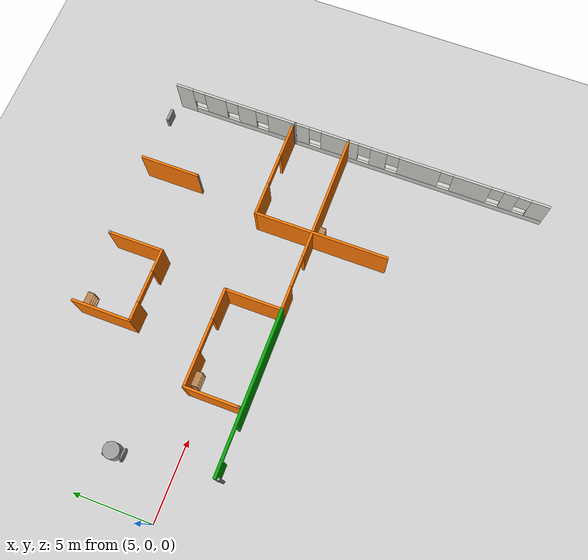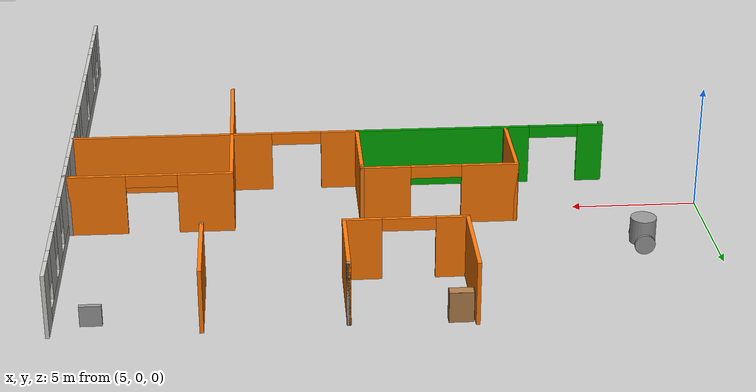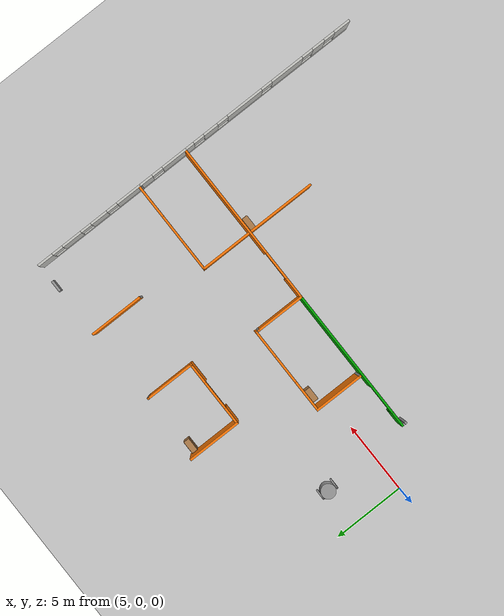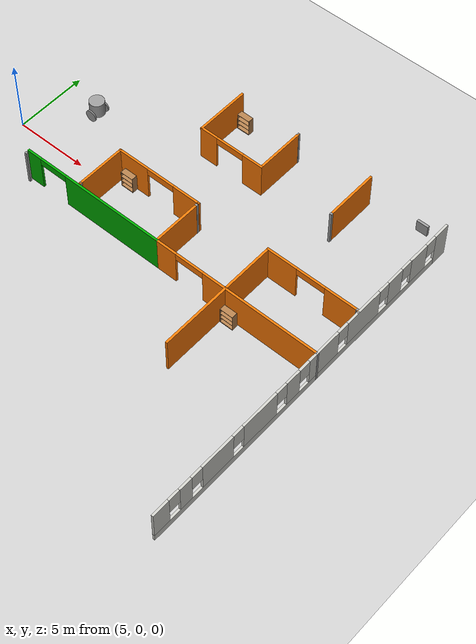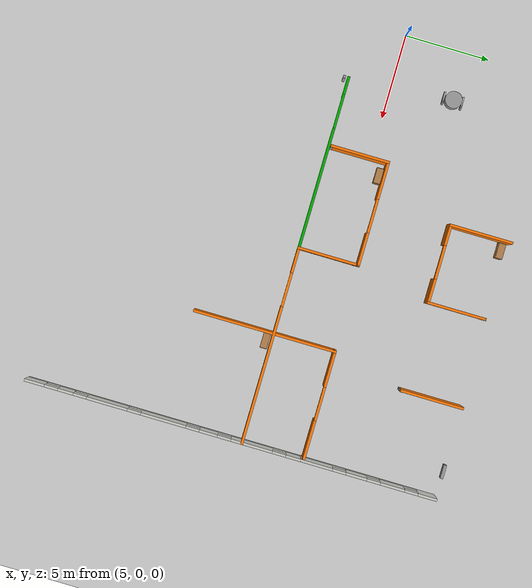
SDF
<sdf version="1.6">
 <world name="default">
  <model name="ground_plane">
   <static>1</static>
   <link name="link">
    <collision name="collision">
     <geometry><plane><normal>0 0 1</normal><size>100 100</size></plane></geometry>
     <surface><friction><ode><mu>100</mu><mu2>50</mu2></ode></friction></surface>
    </collision>
    <visual name="visual">
     <cast_shadows>0</cast_shadows>
     <geometry><plane><normal>0 0 1</normal><size>100 100</size></plane></geometry>
     <material>
      <script><uri>file://media/materials/scripts/gazebo.material</uri><name>Gazebo/Grey</name></script>
     </material>
    </visual>
   </link>
  </model>
  <model name="robot_clone">
   <link name="link_1">
    <inertial>
     <mass>1</mass>
     <inertia><ixx>0.145833</ixx><ixy>0</ixy><ixz>0</ixz><iyy>0.145833</iyy><iyz>0</iyz><izz>0.125</izz></inertia>
    </inertial>
    <visual name="visual">
     <pose>0 0 0.4 0 -0 0</pose>
     <geometry><cylinder><radius>0.5</radius><length>1</length></cylinder></geometry>
     <material>
      <lighting>1</lighting>
      <script><uri>file://media/materials/scripts/gazebo.material</uri><name>Gazebo/Grey</name></script>
      <shader type="pixel"><normal_map>__default__</normal_map></shader>
      <ambient>0.3 0.3 0.3 1</ambient>
      <diffuse>0.7 0.7 0.7 1</diffuse>
      <specular>0.01 0.01 0.01 1</specular>
      <emissive>0 0 0 1</emissive>
     </material>
    </visual>
    <collision name="collision">
     <pose>0 0 0.4 0 -0 0</pose>
     <geometry><cylinder><radius>0.5</radius><length>1</length></cylinder></geometry>
     <surface>
      <friction>
       <ode><mu>1</mu><mu2>1</mu2><fdir1>0 0 0</fdir1><slip1>0</slip1><slip2>0</slip2></ode>
       <torsional>
        <coefficient>1</coefficient>
        <patch_radius>0</patch_radius>
        <surface_radius>0</surface_radius>
        <use_patch_radius>1</use_patch_radius>
        <ode><slip>0</slip></ode>
       </torsional>
      </friction>
      <bounce><restitution_coefficient>0</restitution_coefficient><threshold>1e+06</threshold></bounce>
      <contact>
       <collide_without_contact>0</collide_without_contact>
       <collide_without_contact_bitmask>1</collide_without_contact_bitmask>
       <collide_bitmask>1</collide_bitmask>
       <ode>
        <soft_cfm>0</soft_cfm>
        <soft_erp>0.2</soft_erp>
        <kp>1e+13</kp>
        <kd>1</kd>
        <max_vel>0.01</max_vel>
        <min_depth>0</min_depth>
       </ode>
       <bullet>
        <split_impulse>1</split_impulse>
        <split_impulse_penetration_threshold>-0.01</split_impulse_penetration_threshold>
        <soft_cfm>0</soft_cfm>
        <soft_erp>0.2</soft_erp>
        <kp>1e+13</kp>
        <kd>1</kd>
       </bullet>
      </contact>
     </surface>
    </collision>
   </link>
   <link name="link_1_clone">
    <inertial>
     <mass>1</mass>
     <inertia><ixx>0.145833</ixx><ixy>0</ixy><ixz>0</ixz><iyy>0.145833</iyy><iyz>0</iyz><izz>0.125</izz></inertia>
    </inertial>
    <pose>0 -0.550039 0 1.5707 -0 0</pose>
    <visual name="visual">
     <geometry><cylinder><radius>0.4</radius><length>0.1</length></cylinder></geometry>
     <material>
      <lighting>1</lighting>
      <script><uri>file://media/materials/scripts/gazebo.material</uri><name>Gazebo/Grey</name></script>
      <shader type="pixel"><normal_map>__default__</normal_map></shader>
      <ambient>0.3 0.3 0.3 1</ambient>
      <diffuse>0.7 0.7 0.7 1</diffuse>
      <specular>0.01 0.01 0.01 1</specular>
      <emissive>0 0 0 1</emissive>
     </material>
    </visual>
    <collision name="collision">
     <geometry><cylinder><radius>0.4</radius><length>0.1</length></cylinder></geometry>
     <surface>
      <friction>
       <ode><mu>1</mu><mu2>1</mu2><fdir1>0 0 0</fdir1><slip1>0</slip1><slip2>0</slip2></ode>
       <torsional>
        <coefficient>1</coefficient>
        <patch_radius>0</patch_radius>
        <surface_radius>0</surface_radius>
        <use_patch_radius>1</use_patch_radius>
        <ode><slip>0</slip></ode>
       </torsional>
      </friction>
      <bounce><restitution_coefficient>0</restitution_coefficient><threshold>1e+06</threshold></bounce>
      <contact>
       <collide_without_contact>0</collide_without_contact>
       <collide_without_contact_bitmask>1</collide_without_contact_bitmask>
       <collide_bitmask>1</collide_bitmask>
       <ode>
        <soft_cfm>0</soft_cfm>
        <soft_erp>0.2</soft_erp>
        <kp>1e+13</kp>
        <kd>1</kd>
        <max_vel>0.01</max_vel>
        <min_depth>0</min_depth>
       </ode>
       <bullet>
        <split_impulse>1</split_impulse>
        <split_impulse_penetration_threshold>-0.01</split_impulse_penetration_threshold>
        <soft_cfm>0</soft_cfm>
        <soft_erp>0.2</soft_erp>
        <kp>1e+13</kp>
        <kd>1</kd>
       </bullet>
      </contact>
     </surface>
    </collision>
   </link>
   <link name="link_1_clone_clone">
    <inertial>
     <mass>1</mass>
     <inertia><ixx>0.145833</ixx><ixy>0</ixy><ixz>0</ixz><iyy>0.145833</iyy><iyz>0</iyz><izz>0.125</izz></inertia>
    </inertial>
    <pose>0 0.550039 0 1.5707 -0 0</pose>
    <visual name="visual">
     <geometry><cylinder><radius>0.4</radius><length>0.1</length></cylinder></geometry>
     <material>
      <lighting>1</lighting>
      <script><uri>file://media/materials/scripts/gazebo.material</uri><name>Gazebo/Grey</name></script>
      <shader type="pixel"><normal_map>__default__</normal_map></shader>
      <ambient>0.3 0.3 0.3 1</ambient>
      <diffuse>0.7 0.7 0.7 1</diffuse>
      <specular>0.01 0.01 0.01 1</specular>
      <emissive>0 0 0 1</emissive>
     </material>
    </visual>
    <collision name="collision">
     <geometry><cylinder><radius>0.4</radius><length>0.1</length></cylinder></geometry>
     <surface>
      <friction>
       <ode><mu>1</mu><mu2>1</mu2><fdir1>0 0 0</fdir1><slip1>0</slip1><slip2>0</slip2></ode>
       <torsional>
        <coefficient>1</coefficient>
        <patch_radius>0</patch_radius>
        <surface_radius>0</surface_radius>
        <use_patch_radius>1</use_patch_radius>
        <ode><slip>0</slip></ode>
       </torsional>
      </friction>
      <bounce><restitution_coefficient>0</restitution_coefficient><threshold>1e+06</threshold></bounce>
      <contact>
       <collide_without_contact>0</collide_without_contact>
       <collide_without_contact_bitmask>1</collide_without_contact_bitmask>
       <collide_bitmask>1</collide_bitmask>
       <ode>
        <soft_cfm>0</soft_cfm>
        <soft_erp>0.2</soft_erp>
        <kp>1e+13</kp>
        <kd>1</kd>
        <max_vel>0.01</max_vel>
        <min_depth>0</min_depth>
       </ode>
       <bullet>
        <split_impulse>1</split_impulse>
        <split_impulse_penetration_threshold>-0.01</split_impulse_penetration_threshold>
        <soft_cfm>0</soft_cfm>
        <soft_erp>0.2</soft_erp>
        <kp>1e+13</kp>
        <kd>1</kd>
       </bullet>
      </contact>
     </surface>
    </collision>
   </link>
   <joint name="link_1_JOINT_2" type="revolute">
    <parent>link_1</parent>
    <child>link_1_clone</child>
    <axis>
     <xyz>0 0 1</xyz>
     <use_parent_model_frame>0</use_parent_model_frame>
     <limit>
      <lower>-1.79769e+308</lower>
      <upper>1.79769e+308</upper>
      <effort>-1</effort>
      <velocity>-1</velocity>
     </limit>
     <dynamics>
      <spring_reference>0</spring_reference>
      <spring_stiffness>0</spring_stiffness>
      <damping>0</damping>
     </dynamics>
    </axis>
    <physics>
     <ode><limit><cfm>0</cfm><erp>0.2</erp></limit><suspension><cfm>0</cfm><erp>0.2</erp></suspension></ode>
    </physics>
   </joint>
   <joint name="link_1_JOINT_4" type="revolute">
    <parent>link_1</parent>
    <child>link_1_clone_clone</child>
    <axis>
     <xyz>0 0 1</xyz>
     <use_parent_model_frame>0</use_parent_model_frame>
     <limit>
      <lower>-1.79769e+308</lower>
      <upper>1.79769e+308</upper>
      <effort>-1</effort>
      <velocity>-1</velocity>
     </limit>
     <dynamics>
      <spring_reference>0</spring_reference>
      <spring_stiffness>0</spring_stiffness>
      <damping>0</damping>
     </dynamics>
    </axis>
    <physics>
     <ode><limit><cfm>0</cfm><erp>0.2</erp></limit><suspension><cfm>0</cfm><erp>0.2</erp></suspension></ode>
    </physics>
   </joint>
   <static>0</static>
   <pose>7.91244 3.62299 0.400003 3e-06 -0 0</pose>
  </model>
  <model name="FloorPlan">
   <pose>0.30947 -3.19534 0 0 -0 0</pose>
   <link name="Wall_1">
    <pose>29.8922 -0.024899 0 0 -0 -1.5708</pose>
    <visual name="Wall_1_Visual_0">
     <pose>-11.6902 0 1.25 0 -0 0</pose>
     <geometry><box><size>1.11957 0.15 2.5</size></box></geometry>
     <material>
      <script><uri>file://media/materials/scripts/gazebo.material</uri><name>Gazebo/CeilingTiled</name></script>
      <ambient>0.760784 0.662745 0.627451 1</ambient>
     </material>
     <meta><layer>0</layer></meta>
    </visual>
    <collision name="Wall_1_Collision_0">
     <geometry><box><size>1.11957 0.15 2.5</size></box></geometry>
     <pose>-11.6902 0 1.25 0 -0 0</pose>
    </collision>
    <visual name="Wall_1_Visual_1">
     <pose>0.559784 0 0.25 0 -0 0</pose>
     <geometry><box><size>23.3804 0.15 0.5</size></box></geometry>
     <material>
      <script><uri>file://media/materials/scripts/gazebo.material</uri><name>Gazebo/CeilingTiled</name></script>
      <ambient>0.760784 0.662745 0.627451 1</ambient>
     </material>
     <meta><layer>0</layer></meta>
    </visual>
    <collision name="Wall_1_Collision_1">
     <geometry><box><size>23.3804 0.15 0.5</size></box></geometry>
     <pose>0.559784 0 0.25 0 -0 0</pose>
    </collision>
    <visual name="Wall_1_Visual_2">
     <pose>-9.60688 0 1.5 0 -0 0</pose>
     <geometry><box><size>1.44711 0.15 2</size></box></geometry>
     <material>
      <script><uri>file://media/materials/scripts/gazebo.material</uri><name>Gazebo/CeilingTiled</name></script>
      <ambient>0.760784 0.662745 0.627451 1</ambient>
     </material>
     <meta><layer>0</layer></meta>
    </visual>
    <collision name="Wall_1_Collision_2">
     <geometry><box><size>1.44711 0.15 2</size></box></geometry>
     <pose>-9.60688 0 1.5 0 -0 0</pose>
    </collision>
    <visual name="Wall_1_Visual_3">
     <pose>-7.46678 0 1.5 0 -0 0</pose>
     <geometry><box><size>1.2331 0.15 2</size></box></geometry>
     <material>
      <script><uri>file://media/materials/scripts/gazebo.material</uri><name>Gazebo/CeilingTiled</name></script>
      <ambient>0.760784 0.662745 0.627451 1</ambient>
     </material>
     <meta><layer>0</layer></meta>
    </visual>
    <collision name="Wall_1_Collision_3">
     <geometry><box><size>1.2331 0.15 2</size></box></geometry>
     <pose>-7.46678 0 1.5 0 -0 0</pose>
    </collision>
    <visual name="Wall_1_Visual_4">
     <pose>-4.6579 0 1.5 0 -0 0</pose>
     <geometry><box><size>2.78467 0.15 2</size></box></geometry>
     <material>
      <script><uri>file://media/materials/scripts/gazebo.material</uri><name>Gazebo/CeilingTiled</name></script>
      <ambient>0.760784 0.662745 0.627451 1</ambient>
     </material>
     <meta><layer>0</layer></meta>
    </visual>
    <collision name="Wall_1_Collision_4">
     <geometry><box><size>2.78467 0.15 2</size></box></geometry>
     <pose>-4.6579 0 1.5 0 -0 0</pose>
    </collision>
    <visual name="Wall_1_Visual_5">
     <pose>-1.23374 0 1.5 0 -0 0</pose>
     <geometry><box><size>2.46365 0.15 2</size></box></geometry>
     <material>
      <script><uri>file://media/materials/scripts/gazebo.material</uri><name>Gazebo/CeilingTiled</name></script>
      <ambient>0.760784 0.662745 0.627451 1</ambient>
     </material>
     <meta><layer>0</layer></meta>
    </visual>
    <collision name="Wall_1_Collision_5">
     <geometry><box><size>2.46365 0.15 2</size></box></geometry>
     <pose>-1.23374 0 1.5 0 -0 0</pose>
    </collision>
    <visual name="Wall_1_Visual_6">
     <pose>1.33438 0 1.5 0 -0 0</pose>
     <geometry><box><size>1.07259 0.15 2</size></box></geometry>
     <material>
      <script><uri>file://media/materials/scripts/gazebo.material</uri><name>Gazebo/CeilingTiled</name></script>
      <ambient>0.760784 0.662745 0.627451 1</ambient>
     </material>
     <meta><layer>0</layer></meta>
    </visual>
    <collision name="Wall_1_Collision_6">
     <geometry><box><size>1.07259 0.15 2</size></box></geometry>
     <pose>1.33438 0 1.5 0 -0 0</pose>
    </collision>
    <visual name="Wall_1_Visual_7">
     <pose>4.00951 0 1.5 0 -0 0</pose>
     <geometry><box><size>2.67766 0.15 2</size></box></geometry>
     <material>
      <script><uri>file://media/materials/scripts/gazebo.material</uri><name>Gazebo/CeilingTiled</name></script>
      <ambient>0.760784 0.662745 0.627451 1</ambient>
     </material>
     <meta><layer>0</layer></meta>
    </visual>
    <collision name="Wall_1_Collision_7">
     <geometry><box><size>2.67766 0.15 2</size></box></geometry>
     <pose>4.00951 0 1.5 0 -0 0</pose>
    </collision>
    <visual name="Wall_1_Visual_8">
     <pose>7.35341 0 1.5 0 -0 0</pose>
     <geometry><box><size>2.41015 0.15 2</size></box></geometry>
     <material>
      <script><uri>file://media/materials/scripts/gazebo.material</uri><name>Gazebo/CeilingTiled</name></script>
      <ambient>0.760784 0.662745 0.627451 1</ambient>
     </material>
     <meta><layer>0</layer></meta>
    </visual>
    <collision name="Wall_1_Collision_8">
     <geometry><box><size>2.41015 0.15 2</size></box></geometry>
     <pose>7.35341 0 1.5 0 -0 0</pose>
    </collision>
    <visual name="Wall_1_Visual_9">
     <pose>9.81453 0 1.5 0 -0 0</pose>
     <geometry><box><size>0.91208 0.15 2</size></box></geometry>
     <material>
      <script><uri>file://media/materials/scripts/gazebo.material</uri><name>Gazebo/CeilingTiled</name></script>
      <ambient>0.760784 0.662745 0.627451 1</ambient>
     </material>
     <meta><layer>0</layer></meta>
    </visual>
    <collision name="Wall_1_Collision_9">
     <geometry><box><size>0.91208 0.15 2</size></box></geometry>
     <pose>9.81453 0 1.5 0 -0 0</pose>
    </collision>
    <visual name="Wall_1_Visual_10">
     <pose>11.6603 0 1.5 0 -0 0</pose>
     <geometry><box><size>1.17943 0.15 2</size></box></geometry>
     <material>
      <script><uri>file://media/materials/scripts/gazebo.material</uri><name>Gazebo/CeilingTiled</name></script>
      <ambient>0.760784 0.662745 0.627451 1</ambient>
     </material>
     <meta><layer>0</layer></meta>
    </visual>
    <collision name="Wall_1_Collision_10">
     <geometry><box><size>1.17943 0.15 2</size></box></geometry>
     <pose>11.6603 0 1.5 0 -0 0</pose>
    </collision>
    <visual name="Wall_1_Visual_11">
     <pose>-10.7304 0 1.9 0 -0 0</pose>
     <geometry><box><size>0.8 0.15 1.2</size></box></geometry>
     <material>
      <script><uri>file://media/materials/scripts/gazebo.material</uri><name>Gazebo/CeilingTiled</name></script>
      <ambient>0.760784 0.662745 0.627451 1</ambient>
     </material>
     <meta><layer>0</layer></meta>
    </visual>
    <collision name="Wall_1_Collision_11">
     <geometry><box><size>0.8 0.15 1.2</size></box></geometry>
     <pose>-10.7304 0 1.9 0 -0 0</pose>
    </collision>
    <visual name="Wall_1_Visual_12">
     <pose>-8.48333 0 1.9 0 -0 0</pose>
     <geometry><box><size>0.8 0.15 1.2</size></box></geometry>
     <material>
      <script><uri>file://media/materials/scripts/gazebo.material</uri><name>Gazebo/CeilingTiled</name></script>
      <ambient>0.760784 0.662745 0.627451 1</ambient>
     </material>
     <meta><layer>0</layer></meta>
    </visual>
    <collision name="Wall_1_Collision_12">
     <geometry><box><size>0.8 0.15 1.2</size></box></geometry>
     <pose>-8.48333 0 1.9 0 -0 0</pose>
    </collision>
    <visual name="Wall_1_Visual_13">
     <pose>-6.45023 0 1.9 0 -0 0</pose>
     <geometry><box><size>0.8 0.15 1.2</size></box></geometry>
     <material>
      <script><uri>file://media/materials/scripts/gazebo.material</uri><name>Gazebo/CeilingTiled</name></script>
      <ambient>0.760784 0.662745 0.627451 1</ambient>
     </material>
     <meta><layer>0</layer></meta>
    </visual>
    <collision name="Wall_1_Collision_13">
     <geometry><box><size>0.8 0.15 1.2</size></box></geometry>
     <pose>-6.45023 0 1.9 0 -0 0</pose>
    </collision>
    <visual name="Wall_1_Visual_14">
     <pose>-2.86557 0 1.9 0 -0 0</pose>
     <geometry><box><size>0.8 0.15 1.2</size></box></geometry>
     <material>
      <script><uri>file://media/materials/scripts/gazebo.material</uri><name>Gazebo/CeilingTiled</name></script>
      <ambient>0.760784 0.662745 0.627451 1</ambient>
     </material>
     <meta><layer>0</layer></meta>
    </visual>
    <collision name="Wall_1_Collision_14">
     <geometry><box><size>0.8 0.15 1.2</size></box></geometry>
     <pose>-2.86557 0 1.9 0 -0 0</pose>
    </collision>
    <visual name="Wall_1_Visual_15">
     <pose>0.398088 0 1.9 0 -0 0</pose>
     <geometry><box><size>0.8 0.15 1.2</size></box></geometry>
     <material>
      <script><uri>file://media/materials/scripts/gazebo.material</uri><name>Gazebo/CeilingTiled</name></script>
      <ambient>0.760784 0.662745 0.627451 1</ambient>
     </material>
     <meta><layer>0</layer></meta>
    </visual>
    <collision name="Wall_1_Collision_15">
     <geometry><box><size>0.8 0.15 1.2</size></box></geometry>
     <pose>0.398088 0 1.9 0 -0 0</pose>
    </collision>
    <visual name="Wall_1_Visual_16">
     <pose>2.27068 0 1.9 0 -0 0</pose>
     <geometry><box><size>0.8 0.15 1.2</size></box></geometry>
     <material>
      <script><uri>file://media/materials/scripts/gazebo.material</uri><name>Gazebo/CeilingTiled</name></script>
      <ambient>0.760784 0.662745 0.627451 1</ambient>
     </material>
     <meta><layer>0</layer></meta>
    </visual>
    <collision name="Wall_1_Collision_16">
     <geometry><box><size>0.8 0.15 1.2</size></box></geometry>
     <pose>2.27068 0 1.9 0 -0 0</pose>
    </collision>
    <visual name="Wall_1_Visual_17">
     <pose>5.74834 0 1.9 0 -0 0</pose>
     <geometry><box><size>0.8 0.15 1.2</size></box></geometry>
     <material>
      <script><uri>file://media/materials/scripts/gazebo.material</uri><name>Gazebo/CeilingTiled</name></script>
      <ambient>0.760784 0.662745 0.627451 1</ambient>
     </material>
     <meta><layer>0</layer></meta>
    </visual>
    <collision name="Wall_1_Collision_17">
     <geometry><box><size>0.8 0.15 1.2</size></box></geometry>
     <pose>5.74834 0 1.9 0 -0 0</pose>
    </collision>
    <visual name="Wall_1_Visual_18">
     <pose>8.95849 0 1.9 0 -0 0</pose>
     <geometry><box><size>0.8 0.15 1.2</size></box></geometry>
     <material>
      <script><uri>file://media/materials/scripts/gazebo.material</uri><name>Gazebo/CeilingTiled</name></script>
      <ambient>0.760784 0.662745 0.627451 1</ambient>
     </material>
     <meta><layer>0</layer></meta>
    </visual>
    <collision name="Wall_1_Collision_18">
     <geometry><box><size>0.8 0.15 1.2</size></box></geometry>
     <pose>8.95849 0 1.9 0 -0 0</pose>
    </collision>
    <visual name="Wall_1_Visual_19">
     <pose>10.6706 0 1.9 0 -0 0</pose>
     <geometry><box><size>0.8 0.15 1.2</size></box></geometry>
     <material>
      <script><uri>file://media/materials/scripts/gazebo.material</uri><name>Gazebo/CeilingTiled</name></script>
      <ambient>0.760784 0.662745 0.627451 1</ambient>
     </material>
     <meta><layer>0</layer></meta>
    </visual>
    <collision name="Wall_1_Collision_19">
     <geometry><box><size>0.8 0.15 1.2</size></box></geometry>
     <pose>10.6706 0 1.9 0 -0 0</pose>
    </collision>
   </link>
   <link name="Wall_107">
    <collision name="Wall_107_Collision">
     <geometry><box><size>0.16 0.15 2.5</size></box></geometry>
     <pose>0 0 1.25 0 -0 0</pose>
    </collision>
    <visual name="Wall_107_Visual">
     <pose>0 0 1.25 0 -0 0</pose>
     <geometry><box><size>0.16 0.15 2.5</size></box></geometry>
     <material>
      <script><uri>file://media/materials/scripts/gazebo.material</uri><name>Gazebo/Grey</name></script>
      <ambient>1 1 1 1</ambient>
     </material>
     <meta><layer>0</layer></meta>
    </visual>
    <pose>8.19763 0.399775 0 0 -0 0</pose>
   </link>
   <link name="Wall_123">
    <collision name="Wall_123_Collision">
     <geometry><box><size>0.15 0.15 2.5</size></box></geometry>
     <pose>0 0 1.25 0 -0 0</pose>
    </collision>
    <visual name="Wall_123_Visual">
     <pose>0 0 1.25 0 -0 0</pose>
     <geometry><box><size>0.15 0.15 2.5</size></box></geometry>
     <material>
      <script><uri>file://media/materials/scripts/gazebo.material</uri><name>Gazebo/Grey</name></script>
      <ambient>1 1 1 1</ambient>
     </material>
     <meta><layer>0</layer></meta>
    </visual>
    <pose>29.8852 4.1779 0 0 -0 0</pose>
   </link>
   <link name="Wall_128">
    <pose>24.0926 0.649775 0 0 -0 0</pose>
    <visual name="Wall_128_Visual_0">
     <pose>-5.09508 0 1.25 0 -0 0</pose>
     <geometry><box><size>1.55985 0.15 2.5</size></box></geometry>
     <material>
      <script><uri>file://media/materials/scripts/gazebo.material</uri><name>Gazebo/Grey</name></script>
      <ambient>0.996078 0.47451 0.0196078 1</ambient>
     </material>
     <meta><layer>0</layer></meta>
    </visual>
    <collision name="Wall_128_Collision_0">
     <geometry><box><size>1.55985 0.15 2.5</size></box></geometry>
     <pose>-5.09508 0 1.25 0 -0 0</pose>
    </collision>
    <visual name="Wall_128_Visual_1">
     <pose>1.77992 0 1.25 0 -0 0</pose>
     <geometry><box><size>8.19015 0.15 2.5</size></box></geometry>
     <material>
      <script><uri>file://media/materials/scripts/gazebo.material</uri><name>Gazebo/Grey</name></script>
      <ambient>0.996078 0.47451 0.0196078 1</ambient>
     </material>
     <meta><layer>0</layer></meta>
    </visual>
    <collision name="Wall_128_Collision_1">
     <geometry><box><size>8.19015 0.15 2.5</size></box></geometry>
     <pose>1.77992 0 1.25 0 -0 0</pose>
    </collision>
    <visual name="Wall_128_Visual_2">
     <pose>-3.31515 0 2.25 0 -0 0</pose>
     <geometry><box><size>2 0.15 0.5</size></box></geometry>
     <material>
      <script><uri>file://media/materials/scripts/gazebo.material</uri><name>Gazebo/Grey</name></script>
      <ambient>0.996078 0.47451 0.0196078 1</ambient>
     </material>
     <meta><layer>0</layer></meta>
    </visual>
    <collision name="Wall_128_Collision_2">
     <geometry><box><size>2 0.15 0.5</size></box></geometry>
     <pose>-3.31515 0 2.25 0 -0 0</pose>
    </collision>
   </link>
   <link name="Wall_129">
    <collision name="Wall_129_Collision">
     <geometry><box><size>0.15 0.15 2.5</size></box></geometry>
     <pose>0 0 1.25 0 -0 0</pose>
    </collision>
    <visual name="Wall_129_Visual">
     <pose>0 0 1.25 0 -0 0</pose>
     <geometry><box><size>0.15 0.15 2.5</size></box></geometry>
     <material>
      <script><uri>file://media/materials/scripts/gazebo.material</uri><name>Gazebo/Grey</name></script>
      <ambient>1 1 1 1</ambient>
     </material>
     <meta><layer>0</layer></meta>
    </visual>
    <pose>29.8926 0.649775 0 0 -0 0</pose>
   </link>
   <link name="Wall_131">
    <collision name="Wall_131_Collision">
     <geometry><box><size>3.5 0.15 2.5</size></box></geometry>
     <pose>0 0 1.25 0 -0 0</pose>
    </collision>
    <visual name="Wall_131_Visual">
     <pose>0 0 1.25 0 -0 0</pose>
     <geometry><box><size>3.5 0.15 2.5</size></box></geometry>
     <material>
      <script><uri>file://media/materials/scripts/gazebo.material</uri><name>Gazebo/Grey</name></script>
      <ambient>0.996078 0.47451 0.0196078 1</ambient>
     </material>
     <meta><layer>0</layer></meta>
    </visual>
    <pose>18.2926 2.32477 0 0 -0 1.5708</pose>
   </link>
   <link name="Wall_132">
    <collision name="Wall_132_Collision">
     <geometry><box><size>0.16 0.15 2.5</size></box></geometry>
     <pose>0 0 1.25 0 -0 0</pose>
    </collision>
    <visual name="Wall_132_Visual">
     <pose>0 0 1.25 0 -0 0</pose>
     <geometry><box><size>0.16 0.15 2.5</size></box></geometry>
     <material>
      <script><uri>file://media/materials/scripts/gazebo.material</uri><name>Gazebo/Grey</name></script>
      <ambient>1 1 1 1</ambient>
     </material>
     <meta><layer>0</layer></meta>
    </visual>
    <pose>18.2976 3.99978 0 0 -0 0</pose>
   </link>
   <link name="Wall_134">
    <collision name="Wall_134_Collision">
     <geometry><box><size>8.5 0.15 2.5</size></box></geometry>
     <pose>0 0 1.25 0 -0 0</pose>
    </collision>
    <visual name="Wall_134_Visual">
     <pose>0 0 1.25 0 -0 0</pose>
     <geometry><box><size>8.5 0.15 2.5</size></box></geometry>
     <material>
      <script><uri>file://media/materials/scripts/gazebo.material</uri><name>Gazebo/Grey</name></script>
      <ambient>0.996078 0.47451 0.0196078 1</ambient>
     </material>
     <meta><layer>0</layer></meta>
    </visual>
    <pose>23.3991 0.109907 0 0 -0 -1.5708</pose>
   </link>
   <link name="Wall_157">
    <collision name="Wall_157_Collision">
     <geometry><box><size>3.75 0.15 2.5</size></box></geometry>
     <pose>0 0 1.25 0 -0 0</pose>
    </collision>
    <visual name="Wall_157_Visual">
     <pose>0 0 1.25 0 -0 0</pose>
     <geometry><box><size>3.75 0.15 2.5</size></box></geometry>
     <material>
      <script><uri>file://media/materials/scripts/gazebo.material</uri><name>Gazebo/Grey</name></script>
      <ambient>0.996078 0.47451 0.0196078 1</ambient>
     </material>
     <meta><layer>0</layer></meta>
    </visual>
    <pose>14.6247 10.4033 0 0 -0 -1.5708</pose>
   </link>
   <link name="Wall_158">
    <pose>16.9247 8.60328 0 0 -0 0</pose>
    <visual name="Wall_158_Visual_0">
     <pose>-1.7407 0 1.25 0 -0 0</pose>
     <geometry><box><size>1.2686 0.15 2.5</size></box></geometry>
     <material>
      <script><uri>file://media/materials/scripts/gazebo.material</uri><name>Gazebo/Grey</name></script>
      <ambient>0.996078 0.47451 0.0196078 1</ambient>
     </material>
     <meta><layer>0</layer></meta>
    </visual>
    <collision name="Wall_158_Collision_0">
     <geometry><box><size>1.2686 0.15 2.5</size></box></geometry>
     <pose>-1.7407 0 1.25 0 -0 0</pose>
    </collision>
    <visual name="Wall_158_Visual_1">
     <pose>1.6343 0 1.25 0 -0 0</pose>
     <geometry><box><size>1.4814 0.15 2.5</size></box></geometry>
     <material>
      <script><uri>file://media/materials/scripts/gazebo.material</uri><name>Gazebo/Grey</name></script>
      <ambient>0.996078 0.47451 0.0196078 1</ambient>
     </material>
     <meta><layer>0</layer></meta>
    </visual>
    <collision name="Wall_158_Collision_1">
     <geometry><box><size>1.4814 0.15 2.5</size></box></geometry>
     <pose>1.6343 0 1.25 0 -0 0</pose>
    </collision>
    <visual name="Wall_158_Visual_2">
     <pose>-0.106397 0 2.25 0 -0 0</pose>
     <geometry><box><size>2 0.15 0.5</size></box></geometry>
     <material>
      <script><uri>file://media/materials/scripts/gazebo.material</uri><name>Gazebo/Grey</name></script>
      <ambient>0.996078 0.47451 0.0196078 1</ambient>
     </material>
     <meta><layer>0</layer></meta>
    </visual>
    <collision name="Wall_158_Collision_2">
     <geometry><box><size>2 0.15 0.5</size></box></geometry>
     <pose>-0.106397 0 2.25 0 -0 0</pose>
    </collision>
   </link>
   <link name="Wall_159">
    <collision name="Wall_159_Collision">
     <geometry><box><size>3.5 0.15 2.5</size></box></geometry>
     <pose>0 0 1.25 0 -0 0</pose>
    </collision>
    <visual name="Wall_159_Visual">
     <pose>0 0 1.25 0 -0 0</pose>
     <geometry><box><size>3.5 0.15 2.5</size></box></geometry>
     <material>
      <script><uri>file://media/materials/scripts/gazebo.material</uri><name>Gazebo/Grey</name></script>
      <ambient>0.996078 0.47451 0.0196078 1</ambient>
     </material>
     <meta><layer>0</layer></meta>
    </visual>
    <pose>19.2247 10.2783 0 0 -0 1.5708</pose>
   </link>
   <link name="Wall_160">
    <collision name="Wall_160_Collision">
     <geometry><box><size>0.16 0.15 2.5</size></box></geometry>
     <pose>0 0 1.25 0 -0 0</pose>
    </collision>
    <visual name="Wall_160_Visual">
     <pose>0 0 1.25 0 -0 0</pose>
     <geometry><box><size>0.16 0.15 2.5</size></box></geometry>
     <material>
      <script><uri>file://media/materials/scripts/gazebo.material</uri><name>Gazebo/Grey</name></script>
      <ambient>1 1 1 1</ambient>
     </material>
     <meta><layer>0</layer></meta>
    </visual>
    <pose>19.2297 11.9533 0 0 -0 0</pose>
   </link>
   <link name="Wall_169">
    <collision name="Wall_169_Collision">
     <geometry><box><size>3.5 0.15 2.5</size></box></geometry>
     <pose>0 0 1.25 0 -0 0</pose>
    </collision>
    <visual name="Wall_169_Visual">
     <pose>0 0 1.25 0 -0 0</pose>
     <geometry><box><size>3.5 0.15 2.5</size></box></geometry>
     <material>
      <script><uri>file://media/materials/scripts/gazebo.material</uri><name>Gazebo/Grey</name></script>
      <ambient>0.996078 0.47451 0.0196078 1</ambient>
     </material>
     <meta><layer>0</layer></meta>
    </visual>
    <pose>12.1852 2.5029 0 0 -0 -1.5708</pose>
   </link>
   <link name="Wall_170">
    <collision name="Wall_170_Collision">
     <geometry><box><size>0.16 0.15 2.5</size></box></geometry>
     <pose>0 0 1.25 0 -0 0</pose>
    </collision>
    <visual name="Wall_170_Visual">
     <pose>0 0 1.25 0 -0 0</pose>
     <geometry><box><size>0.16 0.15 2.5</size></box></geometry>
     <material>
      <script><uri>file://media/materials/scripts/gazebo.material</uri><name>Gazebo/Grey</name></script>
      <ambient>1 1 1 1</ambient>
     </material>
     <meta><layer>0</layer></meta>
    </visual>
    <pose>12.1902 0.827902 0 0 -0 0</pose>
   </link>
   <link name="Wall_172">
    <pose>15.2352 4.1779 0 0 -0 0</pose>
    <visual name="Wall_172_Visual_0">
     <pose>-1.99324 0 1.25 0 -0 0</pose>
     <geometry><box><size>2.26353 0.15 2.5</size></box></geometry>
     <material>
      <script><uri>file://media/materials/scripts/gazebo.material</uri><name>Gazebo/Grey</name></script>
      <ambient>0.996078 0.47451 0.0196078 1</ambient>
     </material>
     <meta><layer>0</layer></meta>
    </visual>
    <collision name="Wall_172_Collision_0">
     <geometry><box><size>2.26353 0.15 2.5</size></box></geometry>
     <pose>-1.99324 0 1.25 0 -0 0</pose>
    </collision>
    <visual name="Wall_172_Visual_1">
     <pose>2.13176 0 1.25 0 -0 0</pose>
     <geometry><box><size>1.98647 0.15 2.5</size></box></geometry>
     <material>
      <script><uri>file://media/materials/scripts/gazebo.material</uri><name>Gazebo/Grey</name></script>
      <ambient>0.996078 0.47451 0.0196078 1</ambient>
     </material>
     <meta><layer>0</layer></meta>
    </visual>
    <collision name="Wall_172_Collision_1">
     <geometry><box><size>1.98647 0.15 2.5</size></box></geometry>
     <pose>2.13176 0 1.25 0 -0 0</pose>
    </collision>
    <visual name="Wall_172_Visual_2">
     <pose>0.138528 0 2.25 0 -0 0</pose>
     <geometry><box><size>2 0.15 0.5</size></box></geometry>
     <material>
      <script><uri>file://media/materials/scripts/gazebo.material</uri><name>Gazebo/Grey</name></script>
      <ambient>0.996078 0.47451 0.0196078 1</ambient>
     </material>
     <meta><layer>0</layer></meta>
    </visual>
    <collision name="Wall_172_Collision_2">
     <geometry><box><size>2 0.15 0.5</size></box></geometry>
     <pose>0.138528 0 2.25 0 -0 0</pose>
    </collision>
   </link>
   <link name="Wall_173">
    <collision name="Wall_173_Collision">
     <geometry><box><size>0.16 0.15 2.5</size></box></geometry>
     <pose>0 0 1.25 0 -0 0</pose>
    </collision>
    <visual name="Wall_173_Visual">
     <pose>0 0 1.25 0 -0 0</pose>
     <geometry><box><size>0.16 0.15 2.5</size></box></geometry>
     <material>
      <script><uri>file://media/materials/scripts/gazebo.material</uri><name>Gazebo/Grey</name></script>
      <ambient>0.996078 0.47451 0.0196078 1</ambient>
     </material>
     <meta><layer>0</layer></meta>
    </visual>
    <pose>18.2902 4.1779 0 0 -0 0</pose>
   </link>
   <link name="Wall_175">
    <pose>26.5741 4.28491 0 0 -0 0</pose>
    <visual name="Wall_175_Visual_0">
     <pose>-2.16093 0 1.25 0 -0 0</pose>
     <geometry><box><size>2.17814 0.15 2.5</size></box></geometry>
     <material>
      <script><uri>file://media/materials/scripts/gazebo.material</uri><name>Gazebo/Grey</name></script>
      <ambient>0.996078 0.47451 0.0196078 1</ambient>
     </material>
     <meta><layer>0</layer></meta>
    </visual>
    <collision name="Wall_175_Collision_0">
     <geometry><box><size>2.17814 0.15 2.5</size></box></geometry>
     <pose>-2.16093 0 1.25 0 -0 0</pose>
    </collision>
    <visual name="Wall_175_Visual_1">
     <pose>2.08907 0 1.25 0 -0 0</pose>
     <geometry><box><size>2.32186 0.15 2.5</size></box></geometry>
     <material>
      <script><uri>file://media/materials/scripts/gazebo.material</uri><name>Gazebo/Grey</name></script>
      <ambient>0.996078 0.47451 0.0196078 1</ambient>
     </material>
     <meta><layer>0</layer></meta>
    </visual>
    <collision name="Wall_175_Collision_1">
     <geometry><box><size>2.32186 0.15 2.5</size></box></geometry>
     <pose>2.08907 0 1.25 0 -0 0</pose>
    </collision>
    <visual name="Wall_175_Visual_2">
     <pose>-0.071856 0 2.25 0 -0 0</pose>
     <geometry><box><size>2 0.15 0.5</size></box></geometry>
     <material>
      <script><uri>file://media/materials/scripts/gazebo.material</uri><name>Gazebo/Grey</name></script>
      <ambient>0.996078 0.47451 0.0196078 1</ambient>
     </material>
     <meta><layer>0</layer></meta>
    </visual>
    <collision name="Wall_175_Collision_2">
     <geometry><box><size>2 0.15 0.5</size></box></geometry>
     <pose>-0.071856 0 2.25 0 -0 0</pose>
    </collision>
   </link>
   <link name="Wall_176">
    <collision name="Wall_176_Collision">
     <geometry><box><size>0.16 0.15 2.5</size></box></geometry>
     <pose>0 0 1.25 0 -0 0</pose>
    </collision>
    <visual name="Wall_176_Visual">
     <pose>0 0 1.25 0 -0 0</pose>
     <geometry><box><size>0.16 0.15 2.5</size></box></geometry>
     <material>
      <script><uri>file://media/materials/scripts/gazebo.material</uri><name>Gazebo/Grey</name></script>
      <ambient>1 1 1 1</ambient>
     </material>
     <meta><layer>0</layer></meta>
    </visual>
    <pose>29.7541 4.28491 0 0 -0 0</pose>
   </link>
   <link name="Wall_178">
    <collision name="Wall_178_Collision">
     <geometry><box><size>3.75 0.15 2.5</size></box></geometry>
     <pose>0 0 1.25 0 -0 0</pose>
    </collision>
    <visual name="Wall_178_Visual">
     <pose>0 0 1.25 0 -0 0</pose>
     <geometry><box><size>3.75 0.15 2.5</size></box></geometry>
     <material>
      <script><uri>file://media/materials/scripts/gazebo.material</uri><name>Gazebo/Grey</name></script>
      <ambient>0.996078 0.47451 0.0196078 1</ambient>
     </material>
     <meta><layer>0</layer></meta>
    </visual>
    <pose>24.4691 10.3498 0 0 -0 -1.5708</pose>
   </link>
   <link name="Wall_179">
    <collision name="Wall_179_Collision">
     <geometry><box><size>0.16 0.15 2.5</size></box></geometry>
     <pose>0 0 1.25 0 -0 0</pose>
    </collision>
    <visual name="Wall_179_Visual">
     <pose>0 0 1.25 0 -0 0</pose>
     <geometry><box><size>0.16 0.15 2.5</size></box></geometry>
     <material>
      <script><uri>file://media/materials/scripts/gazebo.material</uri><name>Gazebo/Grey</name></script>
      <ambient>1 1 1 1</ambient>
     </material>
     <meta><layer>0</layer></meta>
    </visual>
    <pose>24.4741 8.54978 0 0 -0 0</pose>
   </link>
   <link name="Wall_4">
    <pose>13.2426 0.649775 0 0 -0 3.14159</pose>
    <visual name="Wall_4_Visual_0">
     <pose>-1.53317 0 1.25 0 -0 0</pose>
     <geometry><box><size>7.18365 0.15 2.5</size></box></geometry>
     <material>
      <script><uri>file://media/materials/scripts/gazebo.material</uri><name>Gazebo/Grey</name></script>
      <ambient>0 0.666667 0 1</ambient>
     </material>
     <meta><layer>0</layer></meta>
    </visual>
    <collision name="Wall_4_Collision_0">
     <geometry><box><size>7.18365 0.15 2.5</size></box></geometry>
     <pose>-1.53317 0 1.25 0 -0 0</pose>
    </collision>
    <visual name="Wall_4_Visual_1">
     <pose>4.59183 0 1.25 0 -0 0</pose>
     <geometry><box><size>1.06635 0.15 2.5</size></box></geometry>
     <material>
      <script><uri>file://media/materials/scripts/gazebo.material</uri><name>Gazebo/Grey</name></script>
      <ambient>0 0.666667 0 1</ambient>
     </material>
     <meta><layer>0</layer></meta>
    </visual>
    <collision name="Wall_4_Collision_1">
     <geometry><box><size>1.06635 0.15 2.5</size></box></geometry>
     <pose>4.59183 0 1.25 0 -0 0</pose>
    </collision>
    <visual name="Wall_4_Visual_2">
     <pose>3.05865 0 2.25 0 -0 0</pose>
     <geometry><box><size>2 0.15 0.5</size></box></geometry>
     <material>
      <script><uri>file://media/materials/scripts/gazebo.material</uri><name>Gazebo/Grey</name></script>
      <ambient>0 0.666667 0 1</ambient>
     </material>
     <meta><layer>0</layer></meta>
    </visual>
    <collision name="Wall_4_Collision_2">
     <geometry><box><size>2 0.15 0.5</size></box></geometry>
     <pose>3.05865 0 2.25 0 -0 0</pose>
    </collision>
   </link>
   <link name="Window_36">
    <collision name="Window_36_Collision">
     <geometry><box><size>0.8 0.17 0.8</size></box></geometry>
     <pose>0 0 0.4 0 -0 0</pose>
    </collision>
    <visual name="Window_36_Visual">
     <pose>0 0 0.4 0 -0 0</pose>
     <geometry><box><size>0.8 0.17 0.8</size></box></geometry>
     <material>
      <script><uri>file://media/materials/scripts/gazebo.material</uri><name>Gazebo/Grey</name></script>
     </material>
    </visual>
    <pose>28.3213 12.2568 0.5 0 -0 0</pose>
   </link>
   <static>1</static>
  </model>
  <model name="bookshelf">
   <static>1</static>
   <link name="link">
    <inertial><mass>1</mass></inertial>
    <collision name="back">
     <pose>0 0.005 0.6 0 -0 0</pose>
     <geometry><box><size>0.9 0.01 1.2</size></box></geometry>
    </collision>
    <visual name="visual1">
     <pose>0 0.005 0.6 0 -0 0</pose>
     <geometry><box><size>0.9 0.01 1.2</size></box></geometry>
     <material>
      <script><uri>file://media/materials/scripts/gazebo.material</uri><name>Gazebo/Wood</name></script>
     </material>
    </visual>
    <collision name="left_side">
     <pose>0.45 -0.195 0.6 0 -0 0</pose>
     <geometry><box><size>0.02 0.4 1.2</size></box></geometry>
    </collision>
    <visual name="visual2">
     <pose>0.45 -0.195 0.6 0 -0 0</pose>
     <geometry><box><size>0.02 0.4 1.2</size></box></geometry>
     <material>
      <script><uri>file://media/materials/scripts/gazebo.material</uri><name>Gazebo/Wood</name></script>
     </material>
    </visual>
    <collision name="right_side">
     <pose>-0.45 -0.195 0.6 0 -0 0</pose>
     <geometry><box><size>0.02 0.4 1.2</size></box></geometry>
    </collision>
    <visual name="visual3">
     <pose>-0.45 -0.195 0.6 0 -0 0</pose>
     <geometry><box><size>0.02 0.4 1.2</size></box></geometry>
     <material>
      <script><uri>file://media/materials/scripts/gazebo.material</uri><name>Gazebo/Wood</name></script>
     </material>
    </visual>
    <collision name="bottom">
     <pose>0 -0.195 0.03 0 -0 0</pose>
     <geometry><box><size>0.88 0.4 0.06</size></box></geometry>
    </collision>
    <visual name="visual4">
     <pose>0 -0.195 0.03 0 -0 0</pose>
     <geometry><box><size>0.88 0.4 0.06</size></box></geometry>
     <material>
      <script><uri>file://media/materials/scripts/gazebo.material</uri><name>Gazebo/Wood</name></script>
     </material>
    </visual>
    <collision name="top">
     <pose>0 -0.195 1.19 0 -0 0</pose>
     <geometry><box><size>0.88 0.4 0.02</size></box></geometry>
    </collision>
    <visual name="visual5">
     <pose>0 -0.195 1.19 0 -0 0</pose>
     <geometry><box><size>0.88 0.4 0.02</size></box></geometry>
     <material>
      <script><uri>file://media/materials/scripts/gazebo.material</uri><name>Gazebo/Wood</name></script>
     </material>
    </visual>
    <collision name="low_shelf">
     <pose>0 -0.195 0.43 0 -0 0</pose>
     <geometry><box><size>0.88 0.4 0.02</size></box></geometry>
    </collision>
    <visual name="visual6">
     <pose>0 -0.195 0.43 0 -0 0</pose>
     <geometry><box><size>0.88 0.4 0.02</size></box></geometry>
     <material>
      <script><uri>file://media/materials/scripts/gazebo.material</uri><name>Gazebo/Wood</name></script>
     </material>
    </visual>
    <collision name="high_shelf">
     <pose>0 -0.195 0.8 0 -0 0</pose>
     <geometry><box><size>0.88 0.4 0.02</size></box></geometry>
    </collision>
    <visual name="visual7">
     <pose>0 -0.195 0.8 0 -0 0</pose>
     <geometry><box><size>0.88 0.4 0.02</size></box></geometry>
     <material>
      <script><uri>file://media/materials/scripts/gazebo.material</uri><name>Gazebo/Wood</name></script>
     </material>
    </visual>
   </link>
   <pose>13.3216 0.899877 0 0 -0 0</pose>
  </model>
  <model name="bookshelf_2">
   <static>1</static>
   <link name="link">
    <inertial><mass>1</mass></inertial>
    <collision name="back">
     <pose>0 0.005 0.6 0 -0 0</pose>
     <geometry><box><size>0.9 0.01 1.2</size></box></geometry>
    </collision>
    <visual name="visual1">
     <pose>0 0.005 0.6 0 -0 0</pose>
     <geometry><box><size>0.9 0.01 1.2</size></box></geometry>
     <material>
      <script><uri>file://media/materials/scripts/gazebo.material</uri><name>Gazebo/Wood</name></script>
     </material>
    </visual>
    <collision name="left_side">
     <pose>0.45 -0.195 0.6 0 -0 0</pose>
     <geometry><box><size>0.02 0.4 1.2</size></box></geometry>
    </collision>
    <visual name="visual2">
     <pose>0.45 -0.195 0.6 0 -0 0</pose>
     <geometry><box><size>0.02 0.4 1.2</size></box></geometry>
     <material>
      <script><uri>file://media/materials/scripts/gazebo.material</uri><name>Gazebo/Wood</name></script>
     </material>
    </visual>
    <collision name="right_side">
     <pose>-0.45 -0.195 0.6 0 -0 0</pose>
     <geometry><box><size>0.02 0.4 1.2</size></box></geometry>
    </collision>
    <visual name="visual3">
     <pose>-0.45 -0.195 0.6 0 -0 0</pose>
     <geometry><box><size>0.02 0.4 1.2</size></box></geometry>
     <material>
      <script><uri>file://media/materials/scripts/gazebo.material</uri><name>Gazebo/Wood</name></script>
     </material>
    </visual>
    <collision name="bottom">
     <pose>0 -0.195 0.03 0 -0 0</pose>
     <geometry><box><size>0.88 0.4 0.06</size></box></geometry>
    </collision>
    <visual name="visual4">
     <pose>0 -0.195 0.03 0 -0 0</pose>
     <geometry><box><size>0.88 0.4 0.06</size></box></geometry>
     <material>
      <script><uri>file://media/materials/scripts/gazebo.material</uri><name>Gazebo/Wood</name></script>
     </material>
    </visual>
    <collision name="top">
     <pose>0 -0.195 1.19 0 -0 0</pose>
     <geometry><box><size>0.88 0.4 0.02</size></box></geometry>
    </collision>
    <visual name="visual5">
     <pose>0 -0.195 1.19 0 -0 0</pose>
     <geometry><box><size>0.88 0.4 0.02</size></box></geometry>
     <material>
      <script><uri>file://media/materials/scripts/gazebo.material</uri><name>Gazebo/Wood</name></script>
     </material>
    </visual>
    <collision name="low_shelf">
     <pose>0 -0.195 0.43 0 -0 0</pose>
     <geometry><box><size>0.88 0.4 0.02</size></box></geometry>
    </collision>
    <visual name="visual6">
     <pose>0 -0.195 0.43 0 -0 0</pose>
     <geometry><box><size>0.88 0.4 0.02</size></box></geometry>
     <material>
      <script><uri>file://media/materials/scripts/gazebo.material</uri><name>Gazebo/Wood</name></script>
     </material>
    </visual>
    <collision name="high_shelf">
     <pose>0 -0.195 0.8 0 -0 0</pose>
     <geometry><box><size>0.88 0.4 0.02</size></box></geometry>
    </collision>
    <visual name="visual7">
     <pose>0 -0.195 0.8 0 -0 0</pose>
     <geometry><box><size>0.88 0.4 0.02</size></box></geometry>
     <material>
      <script><uri>file://media/materials/scripts/gazebo.material</uri><name>Gazebo/Wood</name></script>
     </material>
    </visual>
   </link>
   <pose>24.2556 -2.70502 0 0 -0 0</pose>
  </model>
  <model name="bookshelf_3">
   <static>1</static>
   <link name="link">
    <inertial><mass>1</mass></inertial>
    <collision name="back">
     <pose>0 0.005 0.6 0 -0 0</pose>
     <geometry><box><size>0.9 0.01 1.2</size></box></geometry>
    </collision>
    <visual name="visual1">
     <pose>0 0.005 0.6 0 -0 0</pose>
     <geometry><box><size>0.9 0.01 1.2</size></box></geometry>
     <material>
      <script><uri>file://media/materials/scripts/gazebo.material</uri><name>Gazebo/Wood</name></script>
     </material>
    </visual>
    <collision name="left_side">
     <pose>0.45 -0.195 0.6 0 -0 0</pose>
     <geometry><box><size>0.02 0.4 1.2</size></box></geometry>
    </collision>
    <visual name="visual2">
     <pose>0.45 -0.195 0.6 0 -0 0</pose>
     <geometry><box><size>0.02 0.4 1.2</size></box></geometry>
     <material>
      <script><uri>file://media/materials/scripts/gazebo.material</uri><name>Gazebo/Wood</name></script>
     </material>
    </visual>
    <collision name="right_side">
     <pose>-0.45 -0.195 0.6 0 -0 0</pose>
     <geometry><box><size>0.02 0.4 1.2</size></box></geometry>
    </collision>
    <visual name="visual3">
     <pose>-0.45 -0.195 0.6 0 -0 0</pose>
     <geometry><box><size>0.02 0.4 1.2</size></box></geometry>
     <material>
      <script><uri>file://media/materials/scripts/gazebo.material</uri><name>Gazebo/Wood</name></script>
     </material>
    </visual>
    <collision name="bottom">
     <pose>0 -0.195 0.03 0 -0 0</pose>
     <geometry><box><size>0.88 0.4 0.06</size></box></geometry>
    </collision>
    <visual name="visual4">
     <pose>0 -0.195 0.03 0 -0 0</pose>
     <geometry><box><size>0.88 0.4 0.06</size></box></geometry>
     <material>
      <script><uri>file://media/materials/scripts/gazebo.material</uri><name>Gazebo/Wood</name></script>
     </material>
    </visual>
    <collision name="top">
     <pose>0 -0.195 1.19 0 -0 0</pose>
     <geometry><box><size>0.88 0.4 0.02</size></box></geometry>
    </collision>
    <visual name="visual5">
     <pose>0 -0.195 1.19 0 -0 0</pose>
     <geometry><box><size>0.88 0.4 0.02</size></box></geometry>
     <material>
      <script><uri>file://media/materials/scripts/gazebo.material</uri><name>Gazebo/Wood</name></script>
     </material>
    </visual>
    <collision name="low_shelf">
     <pose>0 -0.195 0.43 0 -0 0</pose>
     <geometry><box><size>0.88 0.4 0.02</size></box></geometry>
    </collision>
    <visual name="visual6">
     <pose>0 -0.195 0.43 0 -0 0</pose>
     <geometry><box><size>0.88 0.4 0.02</size></box></geometry>
     <material>
      <script><uri>file://media/materials/scripts/gazebo.material</uri><name>Gazebo/Wood</name></script>
     </material>
    </visual>
    <collision name="high_shelf">
     <pose>0 -0.195 0.8 0 -0 0</pose>
     <geometry><box><size>0.88 0.4 0.02</size></box></geometry>
    </collision>
    <visual name="visual7">
     <pose>0 -0.195 0.8 0 -0 0</pose>
     <geometry><box><size>0.88 0.4 0.02</size></box></geometry>
     <material>
      <script><uri>file://media/materials/scripts/gazebo.material</uri><name>Gazebo/Wood</name></script>
     </material>
    </visual>
   </link>
   <pose>15.5073 8.8614 0 0 -0 0</pose>
  </model>
 </world>
</sdf>
